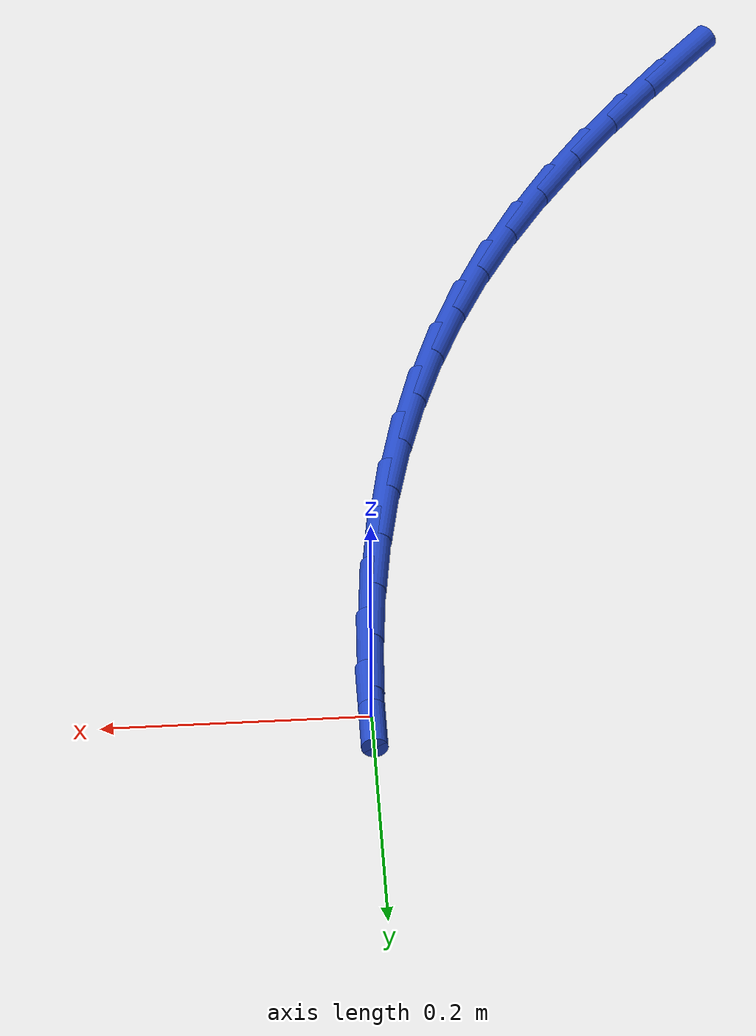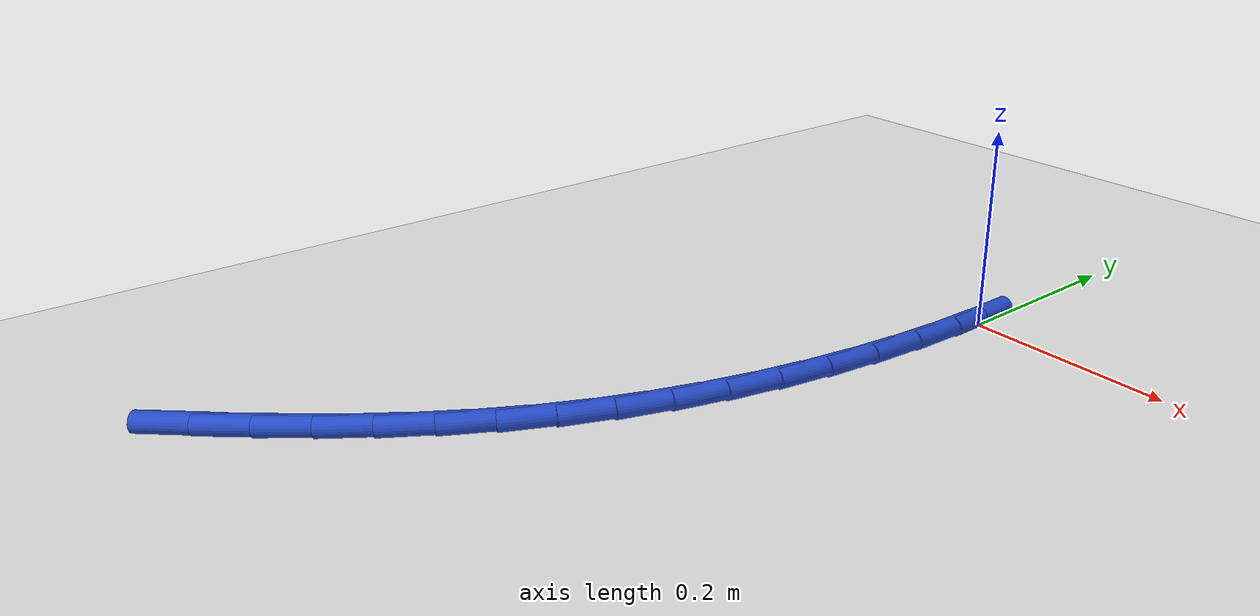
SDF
<sdf version="1.6">
 <world name="default">
  <model name="ground_plane">
   <static>1</static>
   <link name="link">
    <collision name="collision">
     <geometry><plane><normal>0 0 1</normal><size>100 100</size></plane></geometry>
     <surface><friction><ode><mu>100</mu><mu2>50</mu2></ode></friction></surface>
    </collision>
    <visual name="visual">
     <cast_shadows>0</cast_shadows>
     <geometry><plane><normal>0 0 1</normal><size>100 100</size></plane></geometry>
     <material>
      <script><uri>file://media/materials/scripts/gazebo.material</uri><name>Gazebo/WhiteGlow</name></script>
     </material>
    </visual>
   </link>
  </model>
  <model name="line">
   <link name="link_0">
    <pose>-3.122502256758253e-17 -1.3877787807814457e-17 0.01 0 1.57 -1.5706837754737317</pose>
    <collision name="collision">
     <geometry><cylinder><radius>0.01</radius><length>0.08</length></cylinder></geometry>
    </collision>
    <visual name="visual">
     <material>
      <script><name>Gazebo/Blue</name><uri>file://media/materials/scripts/gazebo.material</uri></script>
     </material>
     <geometry><cylinder><radius>0.01</radius><length>0.08</length></cylinder></geometry>
    </visual>
   </link>
   <link name="link_125">
    <pose>-0.28416300716978726 -0.6879782453013343 0.01 0 1.57 0.8345721343498546</pose>
    <collision name="collision">
     <geometry><cylinder><radius>0.01</radius><length>0.08</length></cylinder></geometry>
    </collision>
    <visual name="visual">
     <material>
      <script><name>Gazebo/Blue</name><uri>file://media/materials/scripts/gazebo.material</uri></script>
     </material>
     <geometry><cylinder><radius>0.01</radius><length>0.08</length></cylinder></geometry>
    </visual>
   </link>
   <link name="link_126">
    <pose>-0.24937500430662962 -0.6495889193677709 0.01 0 1.57 0.86692666869803</pose>
    <collision name="collision">
     <geometry><cylinder><radius>0.01</radius><length>0.08</length></cylinder></geometry>
    </collision>
    <visual name="visual">
     <material>
      <script><name>Gazebo/Blue</name><uri>file://media/materials/scripts/gazebo.material</uri></script>
     </material>
     <geometry><cylinder><radius>0.01</radius><length>0.08</length></cylinder></geometry>
    </visual>
   </link>
   <link name="link_127">
    <pose>-0.2163103642960985 -0.6106400854772275 0.01 0 1.57 0.90538500698688</pose>
    <collision name="collision">
     <geometry><cylinder><radius>0.01</radius><length>0.08</length></cylinder></geometry>
    </collision>
    <visual name="visual">
     <material>
      <script><name>Gazebo/Blue</name><uri>file://media/materials/scripts/gazebo.material</uri></script>
     </material>
     <geometry><cylinder><radius>0.01</radius><length>0.08</length></cylinder></geometry>
    </visual>
   </link>
   <link name="link_128">
    <pose>-0.18515377868149296 -0.5709406767957663 0.01 0 1.57 0.949984666572683</pose>
    <collision name="collision">
     <geometry><cylinder><radius>0.01</radius><length>0.08</length></cylinder></geometry>
    </collision>
    <visual name="visual">
     <material>
      <script><name>Gazebo/Blue</name><uri>file://media/materials/scripts/gazebo.material</uri></script>
     </material>
     <geometry><cylinder><radius>0.01</radius><length>0.08</length></cylinder></geometry>
    </visual>
   </link>
   <link name="link_129">
    <pose>-0.15608993900611245 -0.5302996264894495 0.01 0 1.57 1.0006141756064622</pose>
    <collision name="collision">
     <geometry><cylinder><radius>0.01</radius><length>0.08</length></cylinder></geometry>
    </collision>
    <visual name="visual">
     <material>
      <script><name>Gazebo/Blue</name><uri>file://media/materials/scripts/gazebo.material</uri></script>
     </material>
     <geometry><cylinder><radius>0.01</radius><length>0.08</length></cylinder></geometry>
    </visual>
   </link>
   <link name="link_130">
    <pose>-0.1293035368132566 -0.48852586772433965 0.01 0 1.57 1.0569642759147873</pose>
    <collision name="collision">
     <geometry><cylinder><radius>0.01</radius><length>0.08</length></cylinder></geometry>
    </collision>
    <visual name="visual">
     <material>
      <script><name>Gazebo/Blue</name><uri>file://media/materials/scripts/gazebo.material</uri></script>
     </material>
     <geometry><cylinder><radius>0.01</radius><length>0.08</length></cylinder></geometry>
    </visual>
   </link>
   <link name="link_131">
    <pose>-0.10497926364622442 -0.4454283336664983 0.01 0 1.57 1.118010434212056</pose>
    <collision name="collision">
     <geometry><cylinder><radius>0.01</radius><length>0.08</length></cylinder></geometry>
    </collision>
    <visual name="visual">
     <material>
      <script><name>Gazebo/Blue</name><uri>file://media/materials/scripts/gazebo.material</uri></script>
     </material>
     <geometry><cylinder><radius>0.01</radius><length>0.08</length></cylinder></geometry>
    </visual>
   </link>
   <link name="link_132">
    <pose>-0.08328535957636302 -0.4008361498187425 0.01 0 1.57 1.1788429765569326</pose>
    <collision name="collision">
     <geometry><cylinder><radius>0.01</radius><length>0.08</length></cylinder></geometry>
    </collision>
    <visual name="visual">
     <material>
      <script><name>Gazebo/Blue</name><uri>file://media/materials/scripts/gazebo.material</uri></script>
     </material>
     <geometry><cylinder><radius>0.01</radius><length>0.08</length></cylinder></geometry>
    </visual>
   </link>
   <link name="link_133">
    <pose>-0.06424087805708127 -0.3547615515257894 0.01 0 1.57 1.236961534718598</pose>
    <collision name="collision">
     <geometry><cylinder><radius>0.01</radius><length>0.08</length></cylinder></geometry>
    </collision>
    <visual name="visual">
     <material>
      <script><name>Gazebo/Blue</name><uri>file://media/materials/scripts/gazebo.material</uri></script>
     </material>
     <geometry><cylinder><radius>0.01</radius><length>0.08</length></cylinder></geometry>
    </visual>
   </link>
   <link name="link_134">
    <pose>-0.047785438532168545 -0.30731427047046317 0.01 0 1.57 1.2922961164448825</pose>
    <collision name="collision">
     <geometry><cylinder><radius>0.01</radius><length>0.08</length></cylinder></geometry>
    </collision>
    <visual name="visual">
     <material>
      <script><name>Gazebo/Blue</name><uri>file://media/materials/scripts/gazebo.material</uri></script>
     </material>
     <geometry><cylinder><radius>0.01</radius><length>0.08</length></cylinder></geometry>
    </visual>
   </link>
   <link name="link_135">
    <pose>-0.03385792165761674 -0.2586049451147509 0.01 0 1.57 1.3448661304787355</pose>
    <collision name="collision">
     <geometry><cylinder><radius>0.01</radius><length>0.08</length></cylinder></geometry>
    </collision>
    <visual name="visual">
     <material>
      <script><name>Gazebo/Blue</name><uri>file://media/materials/scripts/gazebo.material</uri></script>
     </material>
     <geometry><cylinder><radius>0.01</radius><length>0.08</length></cylinder></geometry>
    </visual>
   </link>
   <link name="link_136">
    <pose>-0.022397208089418422 -0.20874421392064244 0.01 0 1.57 1.394744833868888</pose>
    <collision name="collision">
     <geometry><cylinder><radius>0.01</radius><length>0.08</length></cylinder></geometry>
    </collision>
    <visual name="visual">
     <material>
      <script><name>Gazebo/Blue</name><uri>file://media/materials/scripts/gazebo.material</uri></script>
     </material>
     <geometry><cylinder><radius>0.01</radius><length>0.08</length></cylinder></geometry>
    </visual>
   </link>
   <link name="link_137">
    <pose>-0.013342178483565472 -0.15784271535012503 0.01 0 1.57 1.4420458861446064</pose>
    <collision name="collision">
     <geometry><cylinder><radius>0.01</radius><length>0.08</length></cylinder></geometry>
    </collision>
    <visual name="visual">
     <material>
      <script><name>Gazebo/Blue</name><uri>file://media/materials/scripts/gazebo.material</uri></script>
     </material>
     <geometry><cylinder><radius>0.01</radius><length>0.08</length></cylinder></geometry>
    </visual>
   </link>
   <link name="link_138">
    <pose>-0.006631713496050016 -0.10601108786518693 0.01 0 1.57 1.4869114789593143</pose>
    <collision name="collision">
     <geometry><cylinder><radius>0.01</radius><length>0.08</length></cylinder></geometry>
    </collision>
    <visual name="visual">
     <material>
      <script><name>Gazebo/Blue</name><uri>file://media/materials/scripts/gazebo.material</uri></script>
     </material>
     <geometry><cylinder><radius>0.01</radius><length>0.08</length></cylinder></geometry>
    </visual>
   </link>
   <link name="link_139">
    <pose>-0.0022046937828641656 -0.053359969927816164 0.01 0 1.57 1.5295024410141969</pose>
    <collision name="collision">
     <geometry><cylinder><radius>0.01</radius><length>0.08</length></cylinder></geometry>
    </collision>
    <visual name="visual">
     <material>
      <script><name>Gazebo/Blue</name><uri>file://media/materials/scripts/gazebo.material</uri></script>
     </material>
     <geometry><cylinder><radius>0.01</radius><length>0.08</length></cylinder></geometry>
    </visual>
   </link>
   <link name="link_140">
    <pose>-5.0306980803327406e-17 -1.6653345369377348e-16 0.01 0 1.57 1.5699903844086072</pose>
    <collision name="collision">
     <geometry><cylinder><radius>0.01</radius><length>0.08</length></cylinder></geometry>
    </collision>
    <visual name="visual">
     <material>
      <script><name>Gazebo/Blue</name><uri>file://media/materials/scripts/gazebo.material</uri></script>
     </material>
     <geometry><cylinder><radius>0.01</radius><length>0.08</length></cylinder></geometry>
    </visual>
   </link>
  </model>
 </world>
</sdf>
